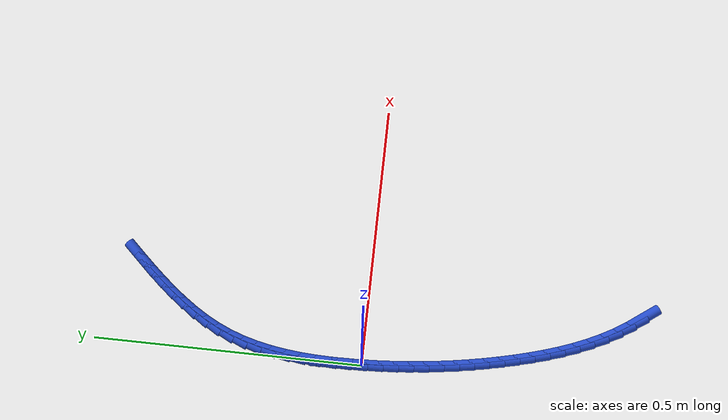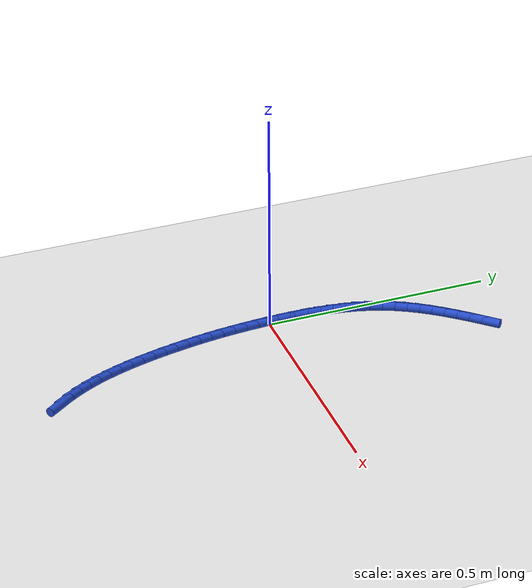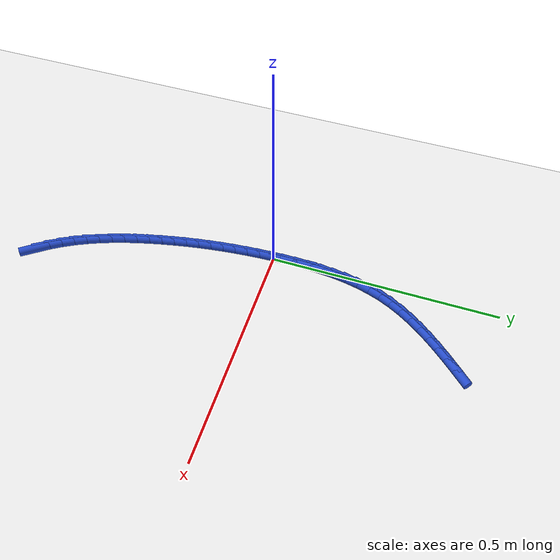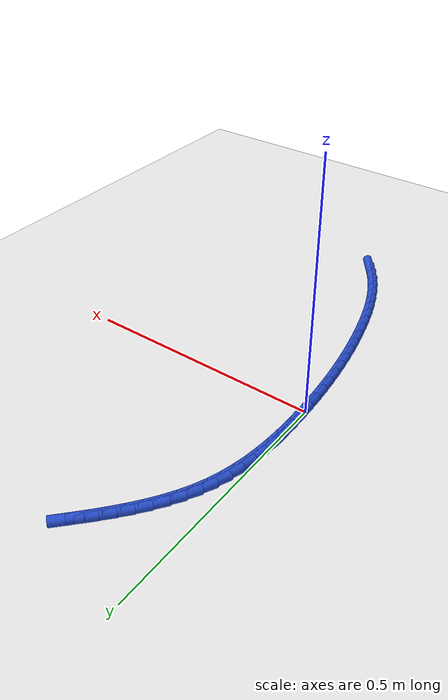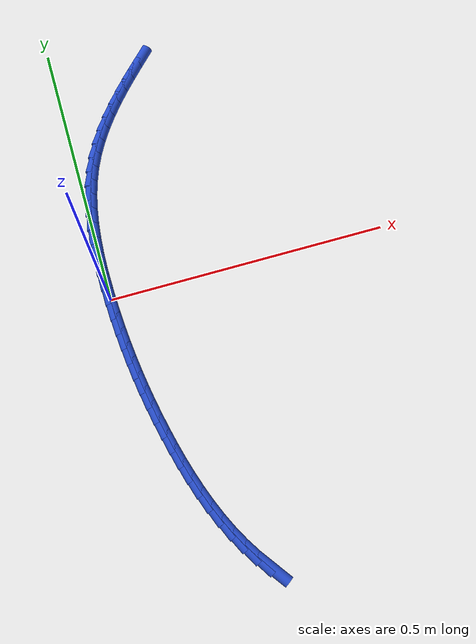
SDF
<sdf version="1.6">
 <world name="default">
  <model name="ground_plane">
   <static>1</static>
   <link name="link">
    <collision name="collision">
     <geometry><plane><normal>0 0 1</normal><size>100 100</size></plane></geometry>
     <surface><friction><ode><mu>100</mu><mu2>50</mu2></ode></friction></surface>
    </collision>
    <visual name="visual">
     <cast_shadows>0</cast_shadows>
     <geometry><plane><normal>0 0 1</normal><size>100 100</size></plane></geometry>
     <material>
      <script><uri>file://media/materials/scripts/gazebo.material</uri><name>Gazebo/WhiteGlow</name></script>
     </material>
    </visual>
   </link>
  </model>
  <model name="line">
   <link name="link_0">
    <pose>1.1926223897340549e-17 -3.469446951953614e-17 0.01 0 1.57 -1.5428741788760894</pose>
    <collision name="collision">
     <geometry><cylinder><radius>0.01</radius><length>0.08</length></cylinder></geometry>
    </collision>
    <visual name="visual">
     <material>
      <script><name>Gazebo/Blue</name><uri>file://media/materials/scripts/gazebo.material</uri></script>
     </material>
     <geometry><cylinder><radius>0.01</radius><length>0.08</length></cylinder></geometry>
    </visual>
   </link>
   <link name="link_1">
    <pose>-0.0007957172115728618 0.028490301335886217 0.01 0 1.57 -1.5666635985957107</pose>
    <collision name="collision">
     <geometry><cylinder><radius>0.01</radius><length>0.08</length></cylinder></geometry>
    </collision>
    <visual name="visual">
     <material>
      <script><name>Gazebo/Blue</name><uri>file://media/materials/scripts/gazebo.material</uri></script>
     </material>
     <geometry><cylinder><radius>0.01</radius><length>0.08</length></cylinder></geometry>
    </visual>
   </link>
   <link name="link_2">
    <pose>-0.0009139597867400655 0.05710140187168107 0.01 0 1.57 1.5456756741016464</pose>
    <collision name="collision">
     <geometry><cylinder><radius>0.01</radius><length>0.08</length></cylinder></geometry>
    </collision>
    <visual name="visual">
     <material>
      <script><name>Gazebo/Blue</name><uri>file://media/materials/scripts/gazebo.material</uri></script>
     </material>
     <geometry><cylinder><radius>0.01</radius><length>0.08</length></cylinder></geometry>
    </visual>
   </link>
   <link name="link_3">
    <pose>-0.0001951501861146704 0.08570967101631574 0.01 0 1.57 1.5106396970600608</pose>
    <collision name="collision">
     <geometry><cylinder><radius>0.01</radius><length>0.08</length></cylinder></geometry>
    </collision>
    <visual name="visual">
     <material>
      <script><name>Gazebo/Blue</name><uri>file://media/materials/scripts/gazebo.material</uri></script>
     </material>
     <geometry><cylinder><radius>0.01</radius><length>0.08</length></cylinder></geometry>
    </visual>
   </link>
   <link name="link_4">
    <pose>0.001520289129690251 0.11419147817872134 0.01 0 1.57 1.4694279208050764</pose>
    <collision name="collision">
     <geometry><cylinder><radius>0.01</radius><length>0.08</length></cylinder></geometry>
    </collision>
    <visual name="visual">
     <material>
      <script><name>Gazebo/Blue</name><uri>file://media/materials/scripts/gazebo.material</uri></script>
     </material>
     <geometry><cylinder><radius>0.01</radius><length>0.08</length></cylinder></geometry>
    </visual>
   </link>
   <link name="link_5">
    <pose>0.004391935700061626 0.14242319276782908 0.01 0 1.57 1.4215998209531024</pose>
    <collision name="collision">
     <geometry><cylinder><radius>0.01</radius><length>0.08</length></cylinder></geometry>
    </collision>
    <visual name="visual">
     <material>
      <script><name>Gazebo/Blue</name><uri>file://media/materials/scripts/gazebo.material</uri></script>
     </material>
     <geometry><cylinder><radius>0.01</radius><length>0.08</length></cylinder></geometry>
    </visual>
   </link>
   <link name="link_6">
    <pose>0.008579367064386386 0.1702811841925701 0.01 0 1.57 1.3667092285419515</pose>
    <collision name="collision">
     <geometry><cylinder><radius>0.01</radius><length>0.08</length></cylinder></geometry>
    </collision>
    <visual name="visual">
     <material>
      <script><name>Gazebo/Blue</name><uri>file://media/materials/scripts/gazebo.material</uri></script>
     </material>
     <geometry><cylinder><radius>0.01</radius><length>0.08</length></cylinder></geometry>
    </visual>
   </link>
   <link name="link_7">
    <pose>0.014242160762051453 0.19764182186187568 0.01 0 1.57 1.3043667330624102</pose>
    <collision name="collision">
     <geometry><cylinder><radius>0.01</radius><length>0.08</length></cylinder></geometry>
    </collision>
    <visual name="visual">
     <material>
      <script><name>Gazebo/Blue</name><uri>file://media/materials/scripts/gazebo.material</uri></script>
     </material>
     <geometry><cylinder><radius>0.01</radius><length>0.08</length></cylinder></geometry>
    </visual>
   </link>
   <link name="link_8">
    <pose>0.021539894332443757 0.2243814751846768 0.01 0 1.57 1.2343275733167118</pose>
    <collision name="collision">
     <geometry><cylinder><radius>0.01</radius><length>0.08</length></cylinder></geometry>
    </collision>
    <visual name="visual">
     <material>
      <script><name>Gazebo/Blue</name><uri>file://media/materials/scripts/gazebo.material</uri></script>
     </material>
     <geometry><cylinder><radius>0.01</radius><length>0.08</length></cylinder></geometry>
    </visual>
   </link>
   <link name="link_9">
    <pose>0.03063214531495022 0.2503765135699048 0.01 0 1.57 1.1573862484050812</pose>
    <collision name="collision">
     <geometry><cylinder><radius>0.01</radius><length>0.08</length></cylinder></geometry>
    </collision>
    <visual name="visual">
     <material>
      <script><name>Gazebo/Blue</name><uri>file://media/materials/scripts/gazebo.material</uri></script>
     </material>
     <geometry><cylinder><radius>0.01</radius><length>0.08</length></cylinder></geometry>
    </visual>
   </link>
   <link name="link_10">
    <pose>0.04165959479168924 0.2755136534556845 0.01 0 1.57 1.0830072604641208</pose>
    <collision name="collision">
     <geometry><cylinder><radius>0.01</radius><length>0.08</length></cylinder></geometry>
    </collision>
    <visual name="visual">
     <material>
      <script><name>Gazebo/Blue</name><uri>file://media/materials/scripts/gazebo.material</uri></script>
     </material>
     <geometry><cylinder><radius>0.01</radius><length>0.08</length></cylinder></geometry>
    </visual>
   </link>
   <link name="link_11">
    <pose>0.05454437246575533 0.29979928225692576 0.01 0 1.57 1.0175543864455008</pose>
    <collision name="collision">
     <geometry><cylinder><radius>0.01</radius><length>0.08</length></cylinder></geometry>
    </collision>
    <visual name="visual">
     <material>
      <script><name>Gazebo/Blue</name><uri>file://media/materials/scripts/gazebo.material</uri></script>
     </material>
     <geometry><cylinder><radius>0.01</radius><length>0.08</length></cylinder></geometry>
    </visual>
   </link>
   <link name="link_12">
    <pose>0.06906813712449951 0.3233167042754136 0.01 0 1.57 0.9612929282947866</pose>
    <collision name="collision">
     <geometry><cylinder><radius>0.01</radius><length>0.08</length></cylinder></geometry>
    </collision>
    <visual name="visual">
     <material>
      <script><name>Gazebo/Blue</name><uri>file://media/materials/scripts/gazebo.material</uri></script>
     </material>
     <geometry><cylinder><radius>0.01</radius><length>0.08</length></cylinder></geometry>
    </visual>
   </link>
   <link name="link_13">
    <pose>0.08501023006902264 0.34615049278613536 0.01 0 1.57 0.914080761599901</pose>
    <collision name="collision">
     <geometry><cylinder><radius>0.01</radius><length>0.08</length></cylinder></geometry>
    </collision>
    <visual name="visual">
     <material>
      <script><name>Gazebo/Blue</name><uri>file://media/materials/scripts/gazebo.material</uri></script>
     </material>
     <geometry><cylinder><radius>0.01</radius><length>0.08</length></cylinder></geometry>
    </visual>
   </link>
   <link name="link_14">
    <pose>0.10214999260042561 0.3683852210640782 0.01 0 1.57 0.8756079305600076</pose>
    <collision name="collision">
     <geometry><cylinder><radius>0.01</radius><length>0.08</length></cylinder></geometry>
    </collision>
    <visual name="visual">
     <material>
      <script><name>Gazebo/Blue</name><uri>file://media/materials/scripts/gazebo.material</uri></script>
     </material>
     <geometry><cylinder><radius>0.01</radius><length>0.08</length></cylinder></geometry>
    </visual>
   </link>
   <link name="link_15">
    <pose>0.12026676601980935 0.3901054623842294 0.01 0 1.57 0.845509774532502</pose>
    <collision name="collision">
     <geometry><cylinder><radius>0.01</radius><length>0.08</length></cylinder></geometry>
    </collision>
    <visual name="visual">
     <material>
      <script><name>Gazebo/Blue</name><uri>file://media/materials/scripts/gazebo.material</uri></script>
     </material>
     <geometry><cylinder><radius>0.01</radius><length>0.08</length></cylinder></geometry>
    </visual>
   </link>
   <link name="link_16">
    <pose>0.1391398916282747 0.4113957900215761 0.01 0 1.57 0.8234472813712401</pose>
    <collision name="collision">
     <geometry><cylinder><radius>0.01</radius><length>0.08</length></cylinder></geometry>
    </collision>
    <visual name="visual">
     <material>
      <script><name>Gazebo/Blue</name><uri>file://media/materials/scripts/gazebo.material</uri></script>
     </material>
     <geometry><cylinder><radius>0.01</radius><length>0.08</length></cylinder></geometry>
    </visual>
   </link>
   <link name="link_17">
    <pose>0.15854871072692264 0.43234077725110565 0.01 0 1.57 0.8091603809582558</pose>
    <collision name="collision">
     <geometry><cylinder><radius>0.01</radius><length>0.08</length></cylinder></geometry>
    </collision>
    <visual name="visual">
     <material>
      <script><name>Gazebo/Blue</name><uri>file://media/materials/scripts/gazebo.material</uri></script>
     </material>
     <geometry><cylinder><radius>0.01</radius><length>0.08</length></cylinder></geometry>
    </visual>
   </link>
   <link name="link_221">
    <pose>0.1396034303089603 -0.5073529965634813 0.01 0 1.57 -0.9409574618022378</pose>
    <collision name="collision">
     <geometry><cylinder><radius>0.01</radius><length>0.08</length></cylinder></geometry>
    </collision>
    <visual name="visual">
     <material>
      <script><name>Gazebo/Blue</name><uri>file://media/materials/scripts/gazebo.material</uri></script>
     </material>
     <geometry><cylinder><radius>0.01</radius><length>0.08</length></cylinder></geometry>
    </visual>
   </link>
   <link name="link_222">
    <pose>0.12336572068794267 -0.4850750114467677 0.01 0 1.57 -1.0087230518279418</pose>
    <collision name="collision">
     <geometry><cylinder><radius>0.01</radius><length>0.08</length></cylinder></geometry>
    </collision>
    <visual name="visual">
     <material>
      <script><name>Gazebo/Blue</name><uri>file://media/materials/scripts/gazebo.material</uri></script>
     </material>
     <geometry><cylinder><radius>0.01</radius><length>0.08</length></cylinder></geometry>
    </visual>
   </link>
   <link name="link_223">
    <pose>0.10861035213104833 -0.4616478977954415 0.01 0 1.57 -1.0701402039205468</pose>
    <collision name="collision">
     <geometry><cylinder><radius>0.01</radius><length>0.08</length></cylinder></geometry>
    </collision>
    <visual name="visual">
     <material>
      <script><name>Gazebo/Blue</name><uri>file://media/materials/scripts/gazebo.material</uri></script>
     </material>
     <geometry><cylinder><radius>0.01</radius><length>0.08</length></cylinder></geometry>
    </visual>
   </link>
   <link name="link_224">
    <pose>0.09523922096954594 -0.43721032961642 0.01 0 1.57 -1.1252217918918244</pose>
    <collision name="collision">
     <geometry><cylinder><radius>0.01</radius><length>0.08</length></cylinder></geometry>
    </collision>
    <visual name="visual">
     <material>
      <script><name>Gazebo/Blue</name><uri>file://media/materials/scripts/gazebo.material</uri></script>
     </material>
     <geometry><cylinder><radius>0.01</radius><length>0.08</length></cylinder></geometry>
    </visual>
   </link>
   <link name="link_225">
    <pose>0.08315222662316792 -0.4119030061148311 0.01 0 1.57 -1.1742240484781281</pose>
    <collision name="collision">
     <geometry><cylinder><radius>0.01</radius><length>0.08</length></cylinder></geometry>
    </collision>
    <visual name="visual">
     <material>
      <script><name>Gazebo/Blue</name><uri>file://media/materials/scripts/gazebo.material</uri></script>
     </material>
     <geometry><cylinder><radius>0.01</radius><length>0.08</length></cylinder></geometry>
    </visual>
   </link>
   <link name="link_226">
    <pose>0.07224926851164706 -0.3858666264958035 0.01 0 1.57 -1.2174782850817127</pose>
    <collision name="collision">
     <geometry><cylinder><radius>0.01</radius><length>0.08</length></cylinder></geometry>
    </collision>
    <visual name="visual">
     <material>
      <script><name>Gazebo/Blue</name><uri>file://media/materials/scripts/gazebo.material</uri></script>
     </material>
     <geometry><cylinder><radius>0.01</radius><length>0.08</length></cylinder></geometry>
    </visual>
   </link>
   <link name="link_227">
    <pose>0.06243024605471626 -0.35924188996446615 0.01 0 1.57 -1.2553401609215282</pose>
    <collision name="collision">
     <geometry><cylinder><radius>0.01</radius><length>0.08</length></cylinder></geometry>
    </collision>
    <visual name="visual">
     <material>
      <script><name>Gazebo/Blue</name><uri>file://media/materials/scripts/gazebo.material</uri></script>
     </material>
     <geometry><cylinder><radius>0.01</radius><length>0.08</length></cylinder></geometry>
    </visual>
   </link>
   <link name="link_228">
    <pose>0.05359505867210834 -0.33216949572594784 0.01 0 1.57 -1.288153508566426</pose>
    <collision name="collision">
     <geometry><cylinder><radius>0.01</radius><length>0.08</length></cylinder></geometry>
    </collision>
    <visual name="visual">
     <material>
      <script><name>Gazebo/Blue</name><uri>file://media/materials/scripts/gazebo.material</uri></script>
     </material>
     <geometry><cylinder><radius>0.01</radius><length>0.08</length></cylinder></geometry>
    </visual>
   </link>
   <link name="link_229">
    <pose>0.04564360578355615 -0.3047901429853773 0.01 0 1.57 -1.3162256161524837</pose>
    <collision name="collision">
     <geometry><cylinder><radius>0.01</radius><length>0.08</length></cylinder></geometry>
    </collision>
    <visual name="visual">
     <material>
      <script><name>Gazebo/Blue</name><uri>file://media/materials/scripts/gazebo.material</uri></script>
     </material>
     <geometry><cylinder><radius>0.01</radius><length>0.08</length></cylinder></geometry>
    </visual>
   </link>
   <link name="link_230">
    <pose>0.03847578680879235 -0.27724453094788265 0.01 0 1.57 -1.3398377804189725</pose>
    <collision name="collision">
     <geometry><cylinder><radius>0.01</radius><length>0.08</length></cylinder></geometry>
    </collision>
    <visual name="visual">
     <material>
      <script><name>Gazebo/Blue</name><uri>file://media/materials/scripts/gazebo.material</uri></script>
     </material>
     <geometry><cylinder><radius>0.01</radius><length>0.08</length></cylinder></geometry>
    </visual>
   </link>
   <link name="link_231">
    <pose>0.03199204676349007 -0.2496722969369961 0.01 0 1.57 -1.3608066879265905</pose>
    <collision name="collision">
     <geometry><cylinder><radius>0.01</radius><length>0.08</length></cylinder></geometry>
    </collision>
    <visual name="visual">
     <material>
      <script><name>Gazebo/Blue</name><uri>file://media/materials/scripts/gazebo.material</uri></script>
     </material>
     <geometry><cylinder><radius>0.01</radius><length>0.08</length></cylinder></geometry>
    </visual>
   </link>
   <link name="link_232">
    <pose>0.026125901134094815 -0.2221487139329947 0.01 0 1.57 -1.3816792499391173</pose>
    <collision name="collision">
     <geometry><cylinder><radius>0.01</radius><length>0.08</length></cylinder></geometry>
    </collision>
    <visual name="visual">
     <material>
      <script><name>Gazebo/Blue</name><uri>file://media/materials/scripts/gazebo.material</uri></script>
     </material>
     <geometry><cylinder><radius>0.01</radius><length>0.08</length></cylinder></geometry>
    </visual>
   </link>
   <link name="link_233">
    <pose>0.020862318029498395 -0.19464891378798468 0.01 0 1.57 -1.402583485552549</pose>
    <collision name="collision">
     <geometry><cylinder><radius>0.01</radius><length>0.08</length></cylinder></geometry>
    </collision>
    <visual name="visual">
     <material>
      <script><name>Gazebo/Blue</name><uri>file://media/materials/scripts/gazebo.material</uri></script>
     </material>
     <geometry><cylinder><radius>0.01</radius><length>0.08</length></cylinder></geometry>
    </visual>
   </link>
   <link name="link_234">
    <pose>0.016190714271228313 -0.16713936992072 0.01 0 1.57 -1.4234228876988229</pose>
    <collision name="collision">
     <geometry><cylinder><radius>0.01</radius><length>0.08</length></cylinder></geometry>
    </collision>
    <visual name="visual">
     <material>
      <script><name>Gazebo/Blue</name><uri>file://media/materials/scripts/gazebo.material</uri></script>
     </material>
     <geometry><cylinder><radius>0.01</radius><length>0.08</length></cylinder></geometry>
    </visual>
   </link>
   <link name="link_235">
    <pose>0.012100506680812048 -0.1395865557499545 0.01 0 1.57 -1.4441009622254815</pose>
    <collision name="collision">
     <geometry><cylinder><radius>0.01</radius><length>0.08</length></cylinder></geometry>
    </collision>
    <visual name="visual">
     <material>
      <script><name>Gazebo/Blue</name><uri>file://media/materials/scripts/gazebo.material</uri></script>
     </material>
     <geometry><cylinder><radius>0.01</radius><length>0.08</length></cylinder></geometry>
    </visual>
   </link>
   <link name="link_236">
    <pose>0.008581112079777091 -0.11195694469444205 0.01 0 1.57 -1.4645229650178184</pose>
    <collision name="collision">
     <geometry><cylinder><radius>0.01</radius><length>0.08</length></cylinder></geometry>
    </collision>
    <visual name="visual">
     <material>
      <script><name>Gazebo/Blue</name><uri>file://media/materials/scripts/gazebo.material</uri></script>
     </material>
     <geometry><cylinder><radius>0.01</radius><length>0.08</length></cylinder></geometry>
    </visual>
   </link>
   <link name="link_237">
    <pose>0.005621947289650929 -0.08421701017293659 0.01 0 1.57 -1.48459757426951</pose>
    <collision name="collision">
     <geometry><cylinder><radius>0.01</radius><length>0.08</length></cylinder></geometry>
    </collision>
    <visual name="visual">
     <material>
      <script><name>Gazebo/Blue</name><uri>file://media/materials/scripts/gazebo.material</uri></script>
     </material>
     <geometry><cylinder><radius>0.01</radius><length>0.08</length></cylinder></geometry>
    </visual>
   </link>
   <link name="link_238">
    <pose>0.0032124291319609822 -0.05633322560419122 0.01 0 1.57 -1.504238429731102</pose>
    <collision name="collision">
     <geometry><cylinder><radius>0.01</radius><length>0.08</length></cylinder></geometry>
    </collision>
    <visual name="visual">
     <material>
      <script><name>Gazebo/Blue</name><uri>file://media/materials/scripts/gazebo.material</uri></script>
     </material>
     <geometry><cylinder><radius>0.01</radius><length>0.08</length></cylinder></geometry>
    </visual>
   </link>
   <link name="link_239">
    <pose>0.0013419744282348784 -0.02827206440696141 0.01 0 1.57 -1.5233654806429604</pose>
    <collision name="collision">
     <geometry><cylinder><radius>0.01</radius><length>0.08</length></cylinder></geometry>
    </collision>
    <visual name="visual">
     <material>
      <script><name>Gazebo/Blue</name><uri>file://media/materials/scripts/gazebo.material</uri></script>
     </material>
     <geometry><cylinder><radius>0.01</radius><length>0.08</length></cylinder></geometry>
    </visual>
   </link>
   <link name="link_240">
    <pose>2.233456475320139e-17 -2.1510571102112408e-16 0.01 0 1.57 -1.5419060977936225</pose>
    <collision name="collision">
     <geometry><cylinder><radius>0.01</radius><length>0.08</length></cylinder></geometry>
    </collision>
    <visual name="visual">
     <material>
      <script><name>Gazebo/Blue</name><uri>file://media/materials/scripts/gazebo.material</uri></script>
     </material>
     <geometry><cylinder><radius>0.01</radius><length>0.08</length></cylinder></geometry>
    </visual>
   </link>
   <link name="link_241">
    <pose>-0.0008240773312160928 0.028516494197938398 0.01 0 1.57 -1.5597959211879733</pose>
    <collision name="collision">
     <geometry><cylinder><radius>0.01</radius><length>0.08</length></cylinder></geometry>
    </collision>
    <visual name="visual">
     <material>
      <script><name>Gazebo/Blue</name><uri>file://media/materials/scripts/gazebo.material</uri></script>
     </material>
     <geometry><cylinder><radius>0.01</radius><length>0.08</length></cylinder></geometry>
    </visual>
   </link>
   <link name="link_242">
    <pose>-0.0011408407438859827 0.057310944768100544 0.01 0 1.57 -1.5508927970884077</pose>
    <collision name="collision">
     <geometry><cylinder><radius>0.01</radius><length>0.08</length></cylinder></geometry>
    </collision>
    <visual name="visual">
     <material>
      <script><name>Gazebo/Blue</name><uri>file://media/materials/scripts/gazebo.material</uri></script>
     </material>
     <geometry><cylinder><radius>0.01</radius><length>0.08</length></cylinder></geometry>
    </visual>
   </link>
  </model>
 </world>
</sdf>
